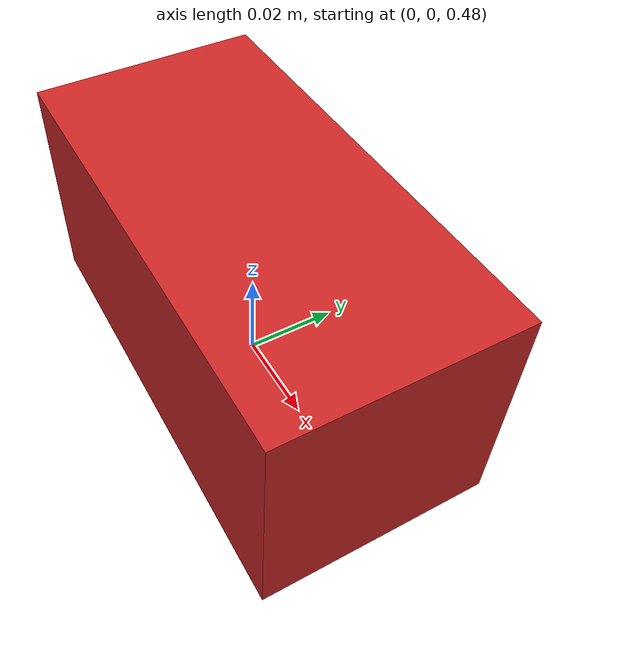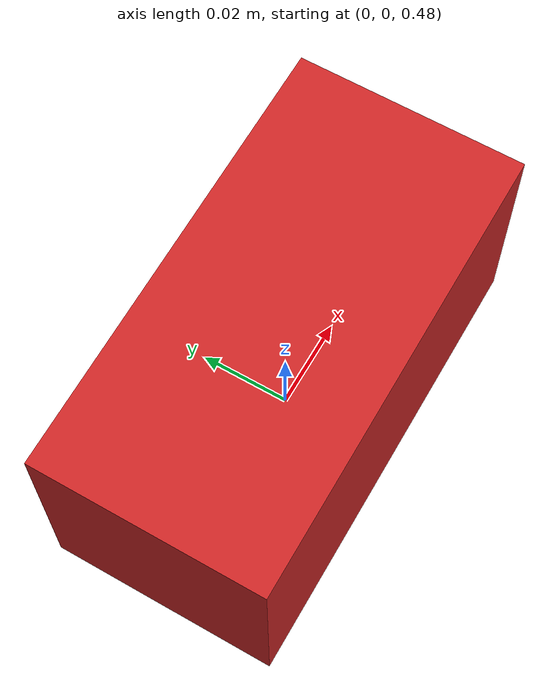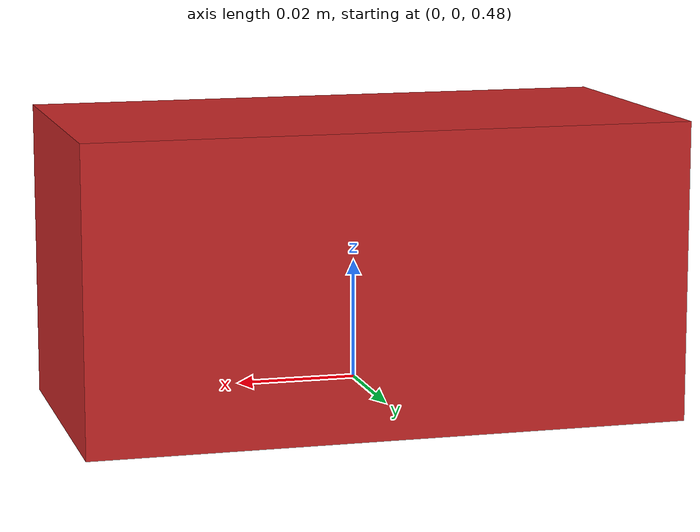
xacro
<?xml version="1.0" ?>
<robot name="simple_kinect" xmlns:xacro="http://www.ros.org/wiki/xacro">

  <link name="world">
      <origin xyz="0.0 0.0 0.0"/>
  </link>

  <joint name="camera_joint" type="fixed">
      <parent link="world"/>
      <child link="camera_link"/>
      <origin rpy="0.0 1.5708 1.5708" xyz="0 0.0 0.5"/>
  </joint>

  <link name="camera_link">
    <visual>
      <origin xyz="0 0 0.0" rpy="0 0 0"/>
      <geometry>
        <box size="0.05 0.1 0.05"/>
      </geometry>
    </visual>

    <inertial>
      <mass value="1e-5" />
      <origin xyz="0 0 0" rpy="0 0 0"/>
      <inertia ixx="1e-6" ixy="0" ixz="0" iyy="1e-6" iyz="0" izz="1e-6" />
    </inertial>
  </link>
  <gazebo reference="camera_link">
    <material>Gazebo/Red</material>
  </gazebo>
  <!-- camera simulator plug-in -->
  <gazebo reference="camera_link">
    <sensor type="depth" name="openni_camera_camera">
        <always_on>1</always_on>
        <visualize>true</visualize>
        <camera>
            <horizontal_fov>1.047</horizontal_fov>
            <image>
                <width>640</width>
                <height>480</height>
                <format>R8G8B8</format>
            </image>
            <depth_camera>

            </depth_camera>
            <clip>
                <near>0.1</near>
                <far>100</far>
            </clip>
        </camera>
      <!--here is the plug-in that does the work of kinect emulation-->
       <plugin name="camera_controller" filename="libgazebo_ros_openni_kinect.so">
            <alwaysOn>true</alwaysOn>
                <updateRate>10.0</updateRate>
                <cameraName>kinect</cameraName>
                <frameName>kinect_depth_frame</frameName>
            <imageTopicName>rgb/image_raw</imageTopicName>
            <depthImageTopicName>depth/image_raw</depthImageTopicName>
            <pointCloudTopicName>depth/points</pointCloudTopicName>
            <cameraInfoTopicName>rgb/camera_info</cameraInfoTopicName>
            <depthImageCameraInfoTopicName>depth/camera_info</depthImageCameraInfoTopicName>
            <pointCloudCutoff>0.3</pointCloudCutoff>
                <hackBaseline>0.07</hackBaseline>
                <distortionK1>0.0</distortionK1>
                <distortionK2>0.0</distortionK2>
                <distortionK3>0.0</distortionK3>
                <distortionT1>0.0</distortionT1>
                <distortionT2>0.0</distortionT2>
            <CxPrime>0.0</CxPrime>
            <Cx>0.0</Cx>
            <Cy>0.0</Cy>
            <focalLength>0.0</focalLength>
            </plugin>
    </sensor>
  </gazebo>

</robot>
